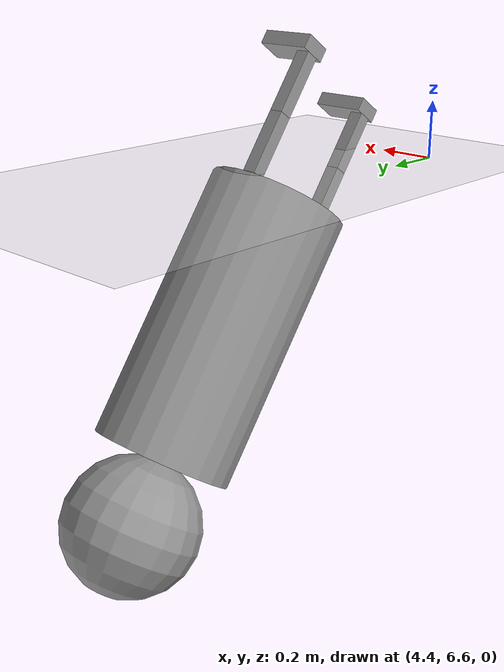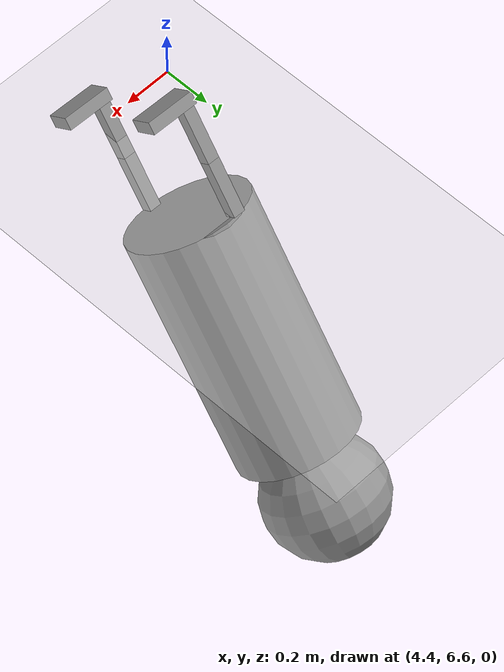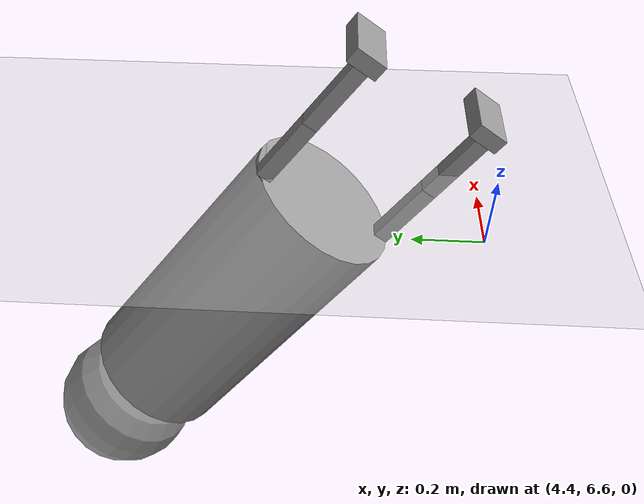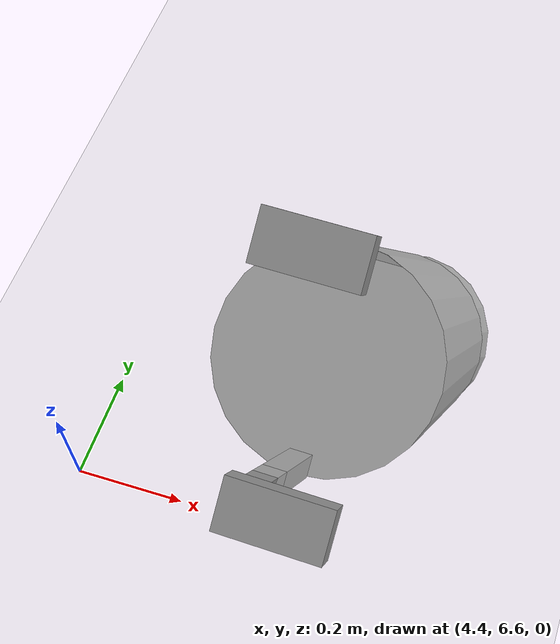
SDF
<sdf version="1.6">
 <world name="default">
  <model name="ground_plane">
   <static>1</static>
   <link name="link">
    <collision name="collision">
     <geometry><plane><normal>0 0 1</normal><size>100 100</size></plane></geometry>
     <surface>
      <contact><collide_bitmask>65535</collide_bitmask></contact>
      <friction><ode><mu>100</mu><mu2>50</mu2></ode></friction>
     </surface>
    </collision>
    <visual name="visual">
     <cast_shadows>0</cast_shadows>
     <geometry><plane><normal>0 0 1</normal><size>100 100</size></plane></geometry>
     <material>
      <script><uri>file://media/materials/scripts/gazebo.material</uri><name>Gazebo/Grey</name></script>
     </material>
    </visual>
   </link>
  </model>
  <model name="Android_clone_0">
   <link name="link_0_clone">
    <pose>0.077813 0.225 -0.462714 0 -0 0</pose>
    <inertial>
     <mass>1</mass>
     <inertia>
      <ixx>0.166667</ixx>
      <ixy>0</ixy>
      <ixz>0</ixz>
      <iyy>0.166667</iyy>
      <iyz>0</iyz>
      <izz>0.166667</izz>
     </inertia>
    </inertial>
    <visual name="visual">
     <geometry><box><size>0.2 0.1 0.05</size></box></geometry>
     <material>
      <lighting>1</lighting>
      <script><uri>file://media/materials/scripts/gazebo.material</uri><name>Gazebo/Grey</name></script>
      <shader type="pixel"><normal_map>__default__</normal_map></shader>
      <ambient>0.3 0.3 0.3 1</ambient>
      <diffuse>0.7 0.7 0.7 1</diffuse>
      <specular>0.01 0.01 0.01 1</specular>
      <emissive>0 0 0 1</emissive>
     </material>
    </visual>
    <collision name="collision">
     <geometry><box><size>0.2 0.1 0.05</size></box></geometry>
     <surface>
      <friction>
       <ode><mu>1</mu><mu2>1</mu2><fdir1>0 0 0</fdir1><slip1>0</slip1><slip2>0</slip2></ode>
       <torsional>
        <coefficient>1</coefficient>
        <patch_radius>0</patch_radius>
        <surface_radius>0</surface_radius>
        <use_patch_radius>1</use_patch_radius>
        <ode><slip>0</slip></ode>
       </torsional>
      </friction>
      <bounce><restitution_coefficient>0</restitution_coefficient><threshold>1e+06</threshold></bounce>
      <contact>
       <collide_without_contact>0</collide_without_contact>
       <collide_without_contact_bitmask>1</collide_without_contact_bitmask>
       <collide_bitmask>1</collide_bitmask>
       <ode>
        <soft_cfm>0</soft_cfm>
        <soft_erp>0.2</soft_erp>
        <kp>1e+13</kp>
        <kd>1</kd>
        <max_vel>0.01</max_vel>
        <min_depth>0</min_depth>
       </ode>
       <bullet>
        <split_impulse>1</split_impulse>
        <split_impulse_penetration_threshold>-0.01</split_impulse_penetration_threshold>
        <soft_cfm>0</soft_cfm>
        <soft_erp>0.2</soft_erp>
        <kp>1e+13</kp>
        <kd>1</kd>
       </bullet>
      </contact>
     </surface>
    </collision>
   </link>
   <link name="link_0_clone_clone">
    <pose>0.020312 -0.225 -0.462144 0 -0 0</pose>
    <inertial>
     <mass>1</mass>
     <inertia>
      <ixx>0.166667</ixx>
      <ixy>0</ixy>
      <ixz>0</ixz>
      <iyy>0.166667</iyy>
      <iyz>0</iyz>
      <izz>0.166667</izz>
     </inertia>
    </inertial>
    <visual name="visual">
     <geometry><box><size>0.2 0.1 0.05</size></box></geometry>
     <material>
      <lighting>1</lighting>
      <script><uri>file://media/materials/scripts/gazebo.material</uri><name>Gazebo/Grey</name></script>
      <shader type="pixel"><normal_map>__default__</normal_map></shader>
      <ambient>0.3 0.3 0.3 1</ambient>
      <diffuse>0.7 0.7 0.7 1</diffuse>
      <specular>0.01 0.01 0.01 1</specular>
      <emissive>0 0 0 1</emissive>
     </material>
    </visual>
    <collision name="collision">
     <geometry><box><size>0.2 0.1 0.05</size></box></geometry>
     <surface>
      <friction>
       <ode><mu>1</mu><mu2>1</mu2><fdir1>0 0 0</fdir1><slip1>0</slip1><slip2>0</slip2></ode>
       <torsional>
        <coefficient>1</coefficient>
        <patch_radius>0</patch_radius>
        <surface_radius>0</surface_radius>
        <use_patch_radius>1</use_patch_radius>
        <ode><slip>0</slip></ode>
       </torsional>
      </friction>
      <bounce><restitution_coefficient>0</restitution_coefficient><threshold>1e+06</threshold></bounce>
      <contact>
       <collide_without_contact>0</collide_without_contact>
       <collide_without_contact_bitmask>1</collide_without_contact_bitmask>
       <collide_bitmask>1</collide_bitmask>
       <ode>
        <soft_cfm>0</soft_cfm>
        <soft_erp>0.2</soft_erp>
        <kp>1e+13</kp>
        <kd>1</kd>
        <max_vel>0.01</max_vel>
        <min_depth>0</min_depth>
       </ode>
       <bullet>
        <split_impulse>1</split_impulse>
        <split_impulse_penetration_threshold>-0.01</split_impulse_penetration_threshold>
        <soft_cfm>0</soft_cfm>
        <soft_erp>0.2</soft_erp>
        <kp>1e+13</kp>
        <kd>1</kd>
       </bullet>
      </contact>
     </surface>
    </collision>
   </link>
   <link name="link_1">
    <pose>-0.054688 -0.225 -0.099644 0 -0 0</pose>
    <inertial>
     <mass>1</mass>
     <inertia>
      <ixx>0.166667</ixx>
      <ixy>0</ixy>
      <ixz>0</ixz>
      <iyy>0.166667</iyy>
      <iyz>0</iyz>
      <izz>0.166667</izz>
     </inertia>
    </inertial>
    <visual name="visual">
     <geometry><box><size>0.05 0.05 0.225</size></box></geometry>
     <material>
      <lighting>1</lighting>
      <script><uri>file://media/materials/scripts/gazebo.material</uri><name>Gazebo/Grey</name></script>
      <shader type="pixel"><normal_map>__default__</normal_map></shader>
      <ambient>0.3 0.3 0.3 1</ambient>
      <diffuse>0.7 0.7 0.7 1</diffuse>
      <specular>0.01 0.01 0.01 1</specular>
      <emissive>0 0 0 1</emissive>
     </material>
    </visual>
    <collision name="collision">
     <geometry><box><size>0.05 0.05 0.225</size></box></geometry>
     <surface>
      <friction>
       <ode><mu>1</mu><mu2>1</mu2><fdir1>0 0 0</fdir1><slip1>0</slip1><slip2>0</slip2></ode>
       <torsional>
        <coefficient>1</coefficient>
        <patch_radius>0</patch_radius>
        <surface_radius>0</surface_radius>
        <use_patch_radius>1</use_patch_radius>
        <ode><slip>0</slip></ode>
       </torsional>
      </friction>
      <bounce><restitution_coefficient>0</restitution_coefficient><threshold>1e+06</threshold></bounce>
      <contact>
       <collide_without_contact>0</collide_without_contact>
       <collide_without_contact_bitmask>1</collide_without_contact_bitmask>
       <collide_bitmask>1</collide_bitmask>
       <ode>
        <soft_cfm>0</soft_cfm>
        <soft_erp>0.2</soft_erp>
        <kp>1e+13</kp>
        <kd>1</kd>
        <max_vel>0.01</max_vel>
        <min_depth>0</min_depth>
       </ode>
       <bullet>
        <split_impulse>1</split_impulse>
        <split_impulse_penetration_threshold>-0.01</split_impulse_penetration_threshold>
        <soft_cfm>0</soft_cfm>
        <soft_erp>0.2</soft_erp>
        <kp>1e+13</kp>
        <kd>1</kd>
       </bullet>
      </contact>
     </surface>
    </collision>
   </link>
   <link name="link_1_clone">
    <pose>-0.054688 -0.225 -0.324644 0 -0 0</pose>
    <inertial>
     <mass>1</mass>
     <inertia>
      <ixx>0.166667</ixx>
      <ixy>0</ixy>
      <ixz>0</ixz>
      <iyy>0.166667</iyy>
      <iyz>0</iyz>
      <izz>0.166667</izz>
     </inertia>
    </inertial>
    <visual name="visual">
     <geometry><box><size>0.05 0.05 0.225</size></box></geometry>
     <material>
      <lighting>1</lighting>
      <script><uri>file://media/materials/scripts/gazebo.material</uri><name>Gazebo/Grey</name></script>
      <shader type="pixel"><normal_map>__default__</normal_map></shader>
      <ambient>0.3 0.3 0.3 1</ambient>
      <diffuse>0.7 0.7 0.7 1</diffuse>
      <specular>0.01 0.01 0.01 1</specular>
      <emissive>0 0 0 1</emissive>
     </material>
    </visual>
    <collision name="collision">
     <geometry><box><size>0.05 0.05 0.225</size></box></geometry>
     <surface>
      <friction>
       <ode><mu>1</mu><mu2>1</mu2><fdir1>0 0 0</fdir1><slip1>0</slip1><slip2>0</slip2></ode>
       <torsional>
        <coefficient>1</coefficient>
        <patch_radius>0</patch_radius>
        <surface_radius>0</surface_radius>
        <use_patch_radius>1</use_patch_radius>
        <ode><slip>0</slip></ode>
       </torsional>
      </friction>
      <bounce><restitution_coefficient>0</restitution_coefficient><threshold>1e+06</threshold></bounce>
      <contact>
       <collide_without_contact>0</collide_without_contact>
       <collide_without_contact_bitmask>1</collide_without_contact_bitmask>
       <collide_bitmask>1</collide_bitmask>
       <ode>
        <soft_cfm>0</soft_cfm>
        <soft_erp>0.2</soft_erp>
        <kp>1e+13</kp>
        <kd>1</kd>
        <max_vel>0.01</max_vel>
        <min_depth>0</min_depth>
       </ode>
       <bullet>
        <split_impulse>1</split_impulse>
        <split_impulse_penetration_threshold>-0.01</split_impulse_penetration_threshold>
        <soft_cfm>0</soft_cfm>
        <soft_erp>0.2</soft_erp>
        <kp>1e+13</kp>
        <kd>1</kd>
       </bullet>
      </contact>
     </surface>
    </collision>
   </link>
   <link name="link_1_clone_clone">
    <pose>0.002813 0.225 -0.100214 0 -0 0</pose>
    <inertial>
     <mass>1</mass>
     <inertia>
      <ixx>0.166667</ixx>
      <ixy>0</ixy>
      <ixz>0</ixz>
      <iyy>0.166667</iyy>
      <iyz>0</iyz>
      <izz>0.166667</izz>
     </inertia>
    </inertial>
    <visual name="visual">
     <geometry><box><size>0.05 0.05 0.225</size></box></geometry>
     <material>
      <lighting>1</lighting>
      <script><uri>file://media/materials/scripts/gazebo.material</uri><name>Gazebo/Grey</name></script>
      <shader type="pixel"><normal_map>__default__</normal_map></shader>
      <ambient>0.3 0.3 0.3 1</ambient>
      <diffuse>0.7 0.7 0.7 1</diffuse>
      <specular>0.01 0.01 0.01 1</specular>
      <emissive>0 0 0 1</emissive>
     </material>
    </visual>
    <collision name="collision">
     <geometry><box><size>0.05 0.05 0.225</size></box></geometry>
     <surface>
      <friction>
       <ode><mu>1</mu><mu2>1</mu2><fdir1>0 0 0</fdir1><slip1>0</slip1><slip2>0</slip2></ode>
       <torsional>
        <coefficient>1</coefficient>
        <patch_radius>0</patch_radius>
        <surface_radius>0</surface_radius>
        <use_patch_radius>1</use_patch_radius>
        <ode><slip>0</slip></ode>
       </torsional>
      </friction>
      <bounce><restitution_coefficient>0</restitution_coefficient><threshold>1e+06</threshold></bounce>
      <contact>
       <collide_without_contact>0</collide_without_contact>
       <collide_without_contact_bitmask>1</collide_without_contact_bitmask>
       <collide_bitmask>1</collide_bitmask>
       <ode>
        <soft_cfm>0</soft_cfm>
        <soft_erp>0.2</soft_erp>
        <kp>1e+13</kp>
        <kd>1</kd>
        <max_vel>0.01</max_vel>
        <min_depth>0</min_depth>
       </ode>
       <bullet>
        <split_impulse>1</split_impulse>
        <split_impulse_penetration_threshold>-0.01</split_impulse_penetration_threshold>
        <soft_cfm>0</soft_cfm>
        <soft_erp>0.2</soft_erp>
        <kp>1e+13</kp>
        <kd>1</kd>
       </bullet>
      </contact>
     </surface>
    </collision>
   </link>
   <link name="link_1_clone_clone_clone">
    <pose>0.002813 0.225 -0.325214 0 -0 0</pose>
    <inertial>
     <mass>1</mass>
     <inertia>
      <ixx>0.166667</ixx>
      <ixy>0</ixy>
      <ixz>0</ixz>
      <iyy>0.166667</iyy>
      <iyz>0</iyz>
      <izz>0.166667</izz>
     </inertia>
    </inertial>
    <visual name="visual">
     <geometry><box><size>0.05 0.05 0.225</size></box></geometry>
     <material>
      <lighting>1</lighting>
      <script><uri>file://media/materials/scripts/gazebo.material</uri><name>Gazebo/Grey</name></script>
      <shader type="pixel"><normal_map>__default__</normal_map></shader>
      <ambient>0.3 0.3 0.3 1</ambient>
      <diffuse>0.7 0.7 0.7 1</diffuse>
      <specular>0.01 0.01 0.01 1</specular>
      <emissive>0 0 0 1</emissive>
     </material>
    </visual>
    <collision name="collision">
     <geometry><box><size>0.05 0.05 0.225</size></box></geometry>
     <surface>
      <friction>
       <ode><mu>1</mu><mu2>1</mu2><fdir1>0 0 0</fdir1><slip1>0</slip1><slip2>0</slip2></ode>
       <torsional>
        <coefficient>1</coefficient>
        <patch_radius>0</patch_radius>
        <surface_radius>0</surface_radius>
        <use_patch_radius>1</use_patch_radius>
        <ode><slip>0</slip></ode>
       </torsional>
      </friction>
      <bounce><restitution_coefficient>0</restitution_coefficient><threshold>1e+06</threshold></bounce>
      <contact>
       <collide_without_contact>0</collide_without_contact>
       <collide_without_contact_bitmask>1</collide_without_contact_bitmask>
       <collide_bitmask>1</collide_bitmask>
       <ode>
        <soft_cfm>0</soft_cfm>
        <soft_erp>0.2</soft_erp>
        <kp>1e+13</kp>
        <kd>1</kd>
        <max_vel>0.01</max_vel>
        <min_depth>0</min_depth>
       </ode>
       <bullet>
        <split_impulse>1</split_impulse>
        <split_impulse_penetration_threshold>-0.01</split_impulse_penetration_threshold>
        <soft_cfm>0</soft_cfm>
        <soft_erp>0.2</soft_erp>
        <kp>1e+13</kp>
        <kd>1</kd>
       </bullet>
      </contact>
     </surface>
    </collision>
   </link>
   <link name="link_2">
    <pose>0.002813 0 0.512286 0 -0 0</pose>
    <inertial>
     <mass>1</mass>
     <inertia><ixx>0.145833</ixx><ixy>0</ixy><ixz>0</ixz><iyy>0.145833</iyy><iyz>0</iyz><izz>0.125</izz></inertia>
    </inertial>
    <visual name="visual">
     <geometry><cylinder><radius>0.25</radius><length>1</length></cylinder></geometry>
     <material>
      <lighting>1</lighting>
      <script><uri>file://media/materials/scripts/gazebo.material</uri><name>Gazebo/Grey</name></script>
      <shader type="pixel"><normal_map>__default__</normal_map></shader>
      <ambient>0.3 0.3 0.3 1</ambient>
      <diffuse>0.7 0.7 0.7 1</diffuse>
      <specular>0.01 0.01 0.01 1</specular>
      <emissive>0 0 0 1</emissive>
     </material>
    </visual>
    <collision name="collision">
     <geometry><cylinder><radius>0.25</radius><length>1</length></cylinder></geometry>
     <surface>
      <friction>
       <ode><mu>1</mu><mu2>1</mu2><fdir1>0 0 0</fdir1><slip1>0</slip1><slip2>0</slip2></ode>
       <torsional>
        <coefficient>1</coefficient>
        <patch_radius>0</patch_radius>
        <surface_radius>0</surface_radius>
        <use_patch_radius>1</use_patch_radius>
        <ode><slip>0</slip></ode>
       </torsional>
      </friction>
      <bounce><restitution_coefficient>0</restitution_coefficient><threshold>1e+06</threshold></bounce>
      <contact>
       <collide_without_contact>0</collide_without_contact>
       <collide_without_contact_bitmask>1</collide_without_contact_bitmask>
       <collide_bitmask>1</collide_bitmask>
       <ode>
        <soft_cfm>0</soft_cfm>
        <soft_erp>0.2</soft_erp>
        <kp>1e+13</kp>
        <kd>1</kd>
        <max_vel>0.01</max_vel>
        <min_depth>0</min_depth>
       </ode>
       <bullet>
        <split_impulse>1</split_impulse>
        <split_impulse_penetration_threshold>-0.01</split_impulse_penetration_threshold>
        <soft_cfm>0</soft_cfm>
        <soft_erp>0.2</soft_erp>
        <kp>1e+13</kp>
        <kd>1</kd>
       </bullet>
      </contact>
     </surface>
    </collision>
   </link>
   <link name="link_3">
    <pose>0.002813 0 1.26229 0 -0 0</pose>
    <inertial>
     <mass>1</mass>
     <inertia><ixx>0.1</ixx><ixy>0</ixy><ixz>0</ixz><iyy>0.1</iyy><iyz>0</iyz><izz>0.1</izz></inertia>
    </inertial>
    <visual name="visual">
     <geometry><sphere><radius>0.25</radius></sphere></geometry>
     <material>
      <lighting>1</lighting>
      <script><uri>file://media/materials/scripts/gazebo.material</uri><name>Gazebo/Grey</name></script>
      <shader type="pixel"><normal_map>__default__</normal_map></shader>
      <ambient>0.3 0.3 0.3 1</ambient>
      <diffuse>0.7 0.7 0.7 1</diffuse>
      <specular>0.01 0.01 0.01 1</specular>
      <emissive>0 0 0 1</emissive>
     </material>
    </visual>
    <collision name="collision">
     <geometry><sphere><radius>0.25</radius></sphere></geometry>
     <surface>
      <friction>
       <ode><mu>1</mu><mu2>1</mu2><fdir1>0 0 0</fdir1><slip1>0</slip1><slip2>0</slip2></ode>
       <torsional>
        <coefficient>1</coefficient>
        <patch_radius>0</patch_radius>
        <surface_radius>0</surface_radius>
        <use_patch_radius>1</use_patch_radius>
        <ode><slip>0</slip></ode>
       </torsional>
      </friction>
      <bounce><restitution_coefficient>0</restitution_coefficient><threshold>1e+06</threshold></bounce>
      <contact>
       <collide_without_contact>0</collide_without_contact>
       <collide_without_contact_bitmask>1</collide_without_contact_bitmask>
       <collide_bitmask>1</collide_bitmask>
       <ode>
        <soft_cfm>0</soft_cfm>
        <soft_erp>0.2</soft_erp>
        <kp>1e+13</kp>
        <kd>1</kd>
        <max_vel>0.01</max_vel>
        <min_depth>0</min_depth>
       </ode>
       <bullet>
        <split_impulse>1</split_impulse>
        <split_impulse_penetration_threshold>-0.01</split_impulse_penetration_threshold>
        <soft_cfm>0</soft_cfm>
        <soft_erp>0.2</soft_erp>
        <kp>1e+13</kp>
        <kd>1</kd>
       </bullet>
      </contact>
     </surface>
    </collision>
   </link>
   <joint name="link_1_JOINT_14" type="revolute">
    <parent>link_1</parent>
    <child>link_1_clone</child>
    <axis>
     <xyz>-1 0 0</xyz>
     <use_parent_model_frame>0</use_parent_model_frame>
     <limit>
      <lower>-1.79769e+308</lower>
      <upper>1.79769e+308</upper>
      <effort>-1</effort>
      <velocity>-1</velocity>
     </limit>
     <dynamics>
      <spring_reference>0</spring_reference>
      <spring_stiffness>0</spring_stiffness>
      <damping>0</damping>
     </dynamics>
    </axis>
    <physics>
     <ode><limit><cfm>0</cfm><erp>0.2</erp></limit><suspension><cfm>0</cfm><erp>0.2</erp></suspension></ode>
    </physics>
   </joint>
   <joint name="link_1_clone_JOINT_15" type="revolute">
    <parent>link_1_clone</parent>
    <child>link_0_clone_clone</child>
    <axis>
     <xyz>1 0 0</xyz>
     <use_parent_model_frame>0</use_parent_model_frame>
     <limit>
      <lower>-1.79769e+308</lower>
      <upper>1.79769e+308</upper>
      <effort>-1</effort>
      <velocity>-1</velocity>
     </limit>
     <dynamics>
      <spring_reference>0</spring_reference>
      <spring_stiffness>0</spring_stiffness>
      <damping>0</damping>
     </dynamics>
    </axis>
    <physics>
     <ode><limit><cfm>0</cfm><erp>0.2</erp></limit><suspension><cfm>0</cfm><erp>0.2</erp></suspension></ode>
    </physics>
   </joint>
   <joint name="link_1_clone_clone_JOINT_11" type="revolute">
    <parent>link_1_clone_clone</parent>
    <child>link_1_clone_clone_clone</child>
    <axis>
     <xyz>-1 0 0</xyz>
     <use_parent_model_frame>0</use_parent_model_frame>
     <limit>
      <lower>-1.79769e+308</lower>
      <upper>1.79769e+308</upper>
      <effort>-1</effort>
      <velocity>-1</velocity>
     </limit>
     <dynamics>
      <spring_reference>0</spring_reference>
      <spring_stiffness>0</spring_stiffness>
      <damping>0</damping>
     </dynamics>
    </axis>
    <physics>
     <ode><limit><cfm>0</cfm><erp>0.2</erp></limit><suspension><cfm>0</cfm><erp>0.2</erp></suspension></ode>
    </physics>
   </joint>
   <joint name="link_1_clone_clone_clone_JOINT_12" type="revolute">
    <parent>link_1_clone_clone_clone</parent>
    <child>link_0_clone</child>
    <axis>
     <xyz>1 0 0</xyz>
     <use_parent_model_frame>0</use_parent_model_frame>
     <limit>
      <lower>-1.79769e+308</lower>
      <upper>1.79769e+308</upper>
      <effort>-1</effort>
      <velocity>-1</velocity>
     </limit>
     <dynamics>
      <spring_reference>0</spring_reference>
      <spring_stiffness>0</spring_stiffness>
      <damping>0</damping>
     </dynamics>
    </axis>
    <physics>
     <ode><limit><cfm>0</cfm><erp>0.2</erp></limit><suspension><cfm>0</cfm><erp>0.2</erp></suspension></ode>
    </physics>
   </joint>
   <joint name="link_2_JOINT_10" type="revolute">
    <parent>link_2</parent>
    <child>link_1_clone_clone</child>
    <axis>
     <xyz>1 0 0</xyz>
     <use_parent_model_frame>0</use_parent_model_frame>
     <limit>
      <lower>-1.79769e+308</lower>
      <upper>1.79769e+308</upper>
      <effort>-1</effort>
      <velocity>-1</velocity>
     </limit>
     <dynamics>
      <spring_reference>0</spring_reference>
      <spring_stiffness>0</spring_stiffness>
      <damping>0</damping>
     </dynamics>
    </axis>
    <physics>
     <ode><limit><cfm>0</cfm><erp>0.2</erp></limit><suspension><cfm>0</cfm><erp>0.2</erp></suspension></ode>
    </physics>
   </joint>
   <joint name="link_2_JOINT_13" type="revolute">
    <parent>link_2</parent>
    <child>link_1</child>
    <axis>
     <xyz>1 0 0</xyz>
     <use_parent_model_frame>0</use_parent_model_frame>
     <limit>
      <lower>-1.79769e+308</lower>
      <upper>1.79769e+308</upper>
      <effort>-1</effort>
      <velocity>-1</velocity>
     </limit>
     <dynamics>
      <spring_reference>0</spring_reference>
      <spring_stiffness>0</spring_stiffness>
      <damping>0</damping>
     </dynamics>
    </axis>
    <physics>
     <ode><limit><cfm>0</cfm><erp>0.2</erp></limit><suspension><cfm>0</cfm><erp>0.2</erp></suspension></ode>
    </physics>
   </joint>
   <joint name="link_3_JOINT_20" type="revolute">
    <parent>link_2</parent>
    <child>link_3</child>
    <axis>
     <xyz>0 0 1</xyz>
     <use_parent_model_frame>0</use_parent_model_frame>
     <limit>
      <lower>-1.79769e+308</lower>
      <upper>1.79769e+308</upper>
      <effort>-1</effort>
      <velocity>-1</velocity>
     </limit>
     <dynamics>
      <spring_reference>0</spring_reference>
      <spring_stiffness>0</spring_stiffness>
      <damping>0</damping>
     </dynamics>
    </axis>
    <physics>
     <ode><limit><cfm>0</cfm><erp>0.2</erp></limit><suspension><cfm>0</cfm><erp>0.2</erp></suspension></ode>
    </physics>
   </joint>
   <static>0</static>
   <pose>4.72998 7.02484 -0.121507 -2.53397 1e-06 -0.019114</pose>
  </model>
 </world>
</sdf>
